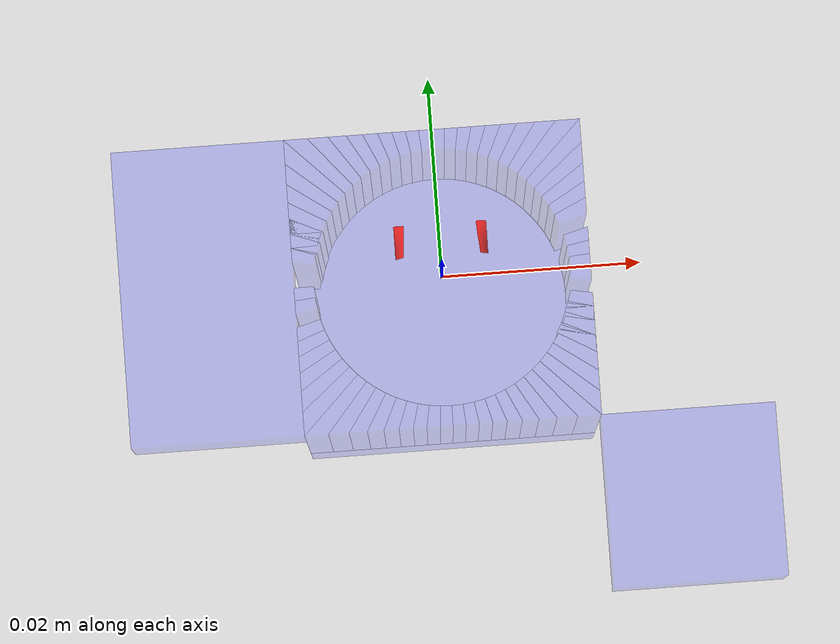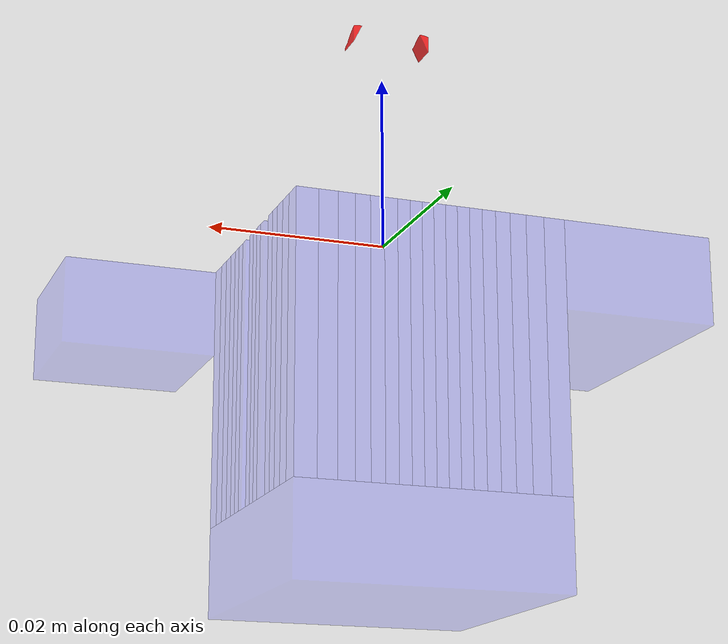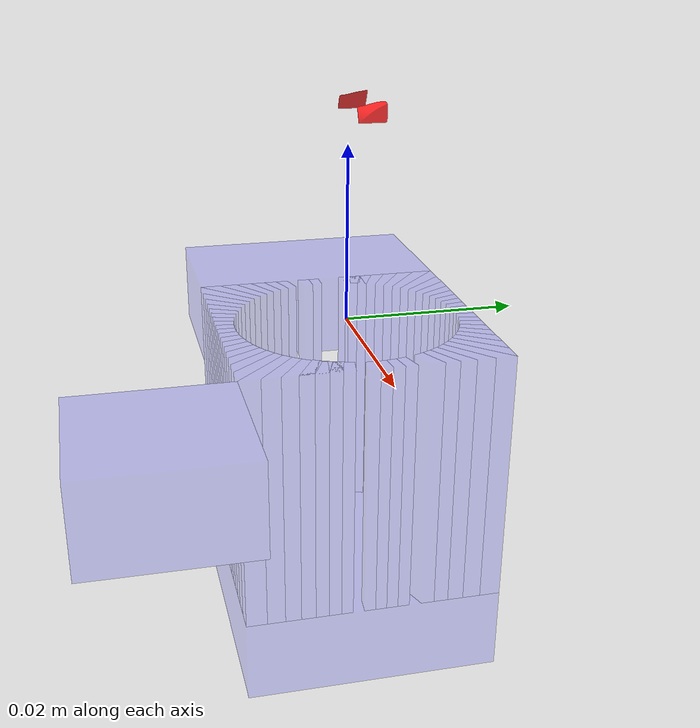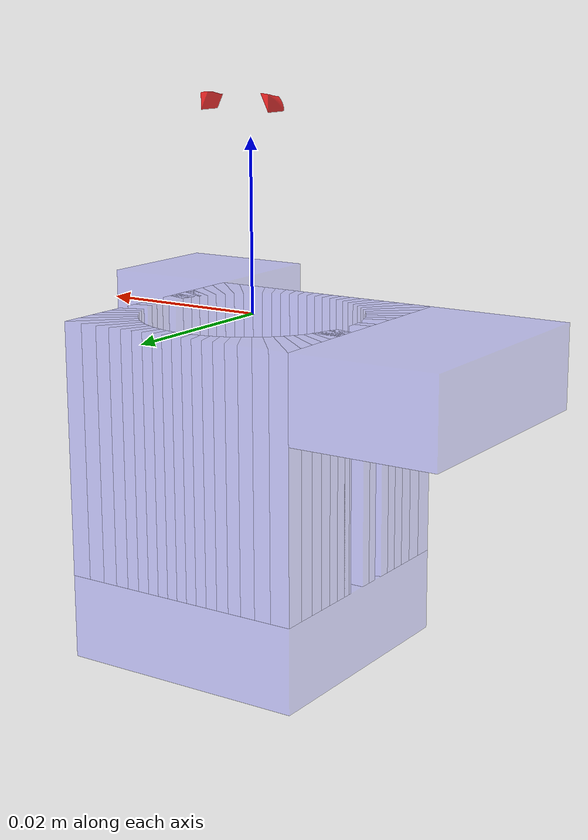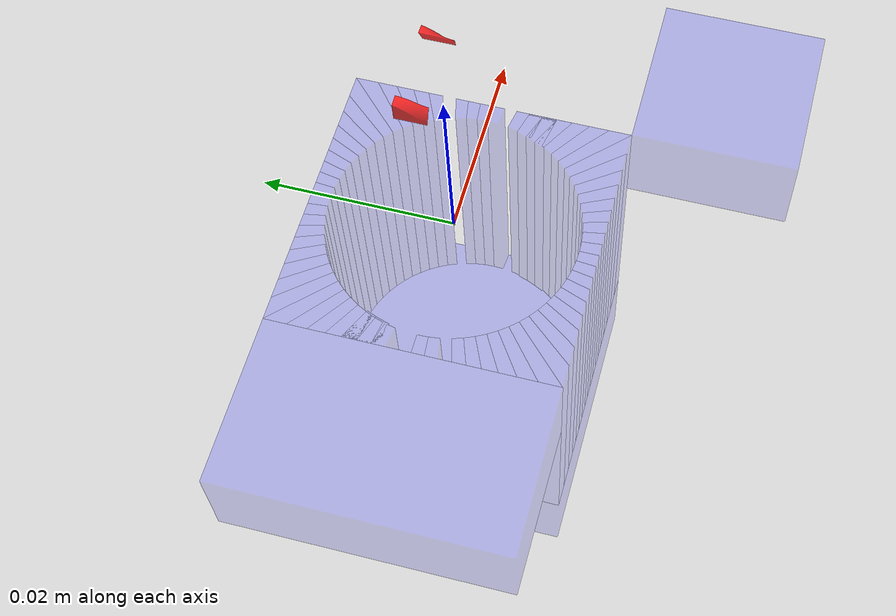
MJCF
<mujoco>
    <option timestep=".001">
        <flag energy="enable" contact="enable" override="enable"/>
    </option>

    <default>
        <default class="hole_geom">
            <geom xyaxes="1 0 0 0 1 0" rgba="0 0 1 0.2"/>
        </default>
        <site size="0.0002" />
        <geom friction="10000" />
    </default>

    <visual>
        <global offwidth="960" offheight="720"/>
    </visual>

    <asset>
        <mesh name="peg1" file="../asset/slotted_circle/slotted_circle_peg/Body1.stl" />
        <mesh name="peg2" file="../asset/slotted_circle/slotted_circle_peg/Body2.stl" />
        <mesh name="peg3" file="../asset/slotted_circle/slotted_circle_peg/Body3.stl" />
        <mesh name="peg4" file="../asset/slotted_circle/slotted_circle_peg/Body4.stl" />
        <mesh name="peg5" file="../asset/slotted_circle/slotted_circle_peg/Body5.stl" />
        <mesh name="peg6" file="../asset/slotted_circle/slotted_circle_peg/Body6.stl" />
        <mesh name="peg7" file="../asset/slotted_circle/slotted_circle_peg/Body7.stl" />
        <mesh name="peg8" file="../asset/slotted_circle/slotted_circle_peg/Body8.stl" />
        <mesh name="peg9" file="../asset/slotted_circle/slotted_circle_peg/Body9.stl" />
        <mesh name="peg10" file="../asset/slotted_circle/slotted_circle_peg/Body10.stl" />
        <mesh name="peg11" file="../asset/slotted_circle/slotted_circle_peg/Body11.stl" />
        <mesh name="peg12" file="../asset/slotted_circle/slotted_circle_peg/Body12.stl" />
        <mesh name="peg13" file="../asset/slotted_circle/slotted_circle_peg/Body13.stl" />
        <mesh name="peg14" file="../asset/slotted_circle/slotted_circle_peg/Body14.stl" />
        <mesh name="peg15" file="../asset/slotted_circle/slotted_circle_peg/Body15.stl" />
        <mesh name="peg16" file="../asset/slotted_circle/slotted_circle_peg/Body16.stl" />
        <mesh name="peg17" file="../asset/slotted_circle/slotted_circle_peg/Body17.stl" />
        <mesh name="peg18" file="../asset/slotted_circle/slotted_circle_peg/Body18.stl" />
        <mesh name="peg19" file="../asset/slotted_circle/slotted_circle_peg/Body19.stl" />
        <mesh name="peg20" file="../asset/slotted_circle/slotted_circle_peg/Body20.stl" />

        <mesh name="hole1" file="../asset/slotted_circle/slotted_circle_hole/Body1.stl" />
        <mesh name="hole2" file="../asset/slotted_circle/slotted_circle_hole/Body2.stl" />
        <mesh name="hole3" file="../asset/slotted_circle/slotted_circle_hole/Body3.stl" />
        <mesh name="hole4" file="../asset/slotted_circle/slotted_circle_hole/Body4.stl" />
        <mesh name="hole5" file="../asset/slotted_circle/slotted_circle_hole/Body5.stl" />
        <mesh name="hole6" file="../asset/slotted_circle/slotted_circle_hole/Body6.stl" />
        <mesh name="hole7" file="../asset/slotted_circle/slotted_circle_hole/Body7.stl" />
        <mesh name="hole8" file="../asset/slotted_circle/slotted_circle_hole/Body8.stl" />
        <mesh name="hole9" file="../asset/slotted_circle/slotted_circle_hole/Body9.stl" />
        <mesh name="hole10" file="../asset/slotted_circle/slotted_circle_hole/Body10.stl" />
        <mesh name="hole11" file="../asset/slotted_circle/slotted_circle_hole/Body11.stl" />
        <mesh name="hole12" file="../asset/slotted_circle/slotted_circle_hole/Body12.stl" />
        <mesh name="hole13" file="../asset/slotted_circle/slotted_circle_hole/Body13.stl" />
        <mesh name="hole14" file="../asset/slotted_circle/slotted_circle_hole/Body14.stl" />
        <mesh name="hole15" file="../asset/slotted_circle/slotted_circle_hole/Body15.stl" />
        <mesh name="hole16" file="../asset/slotted_circle/slotted_circle_hole/Body16.stl" />
        <mesh name="hole17" file="../asset/slotted_circle/slotted_circle_hole/Body17.stl" />
        <mesh name="hole18" file="../asset/slotted_circle/slotted_circle_hole/Body18.stl" />
        <mesh name="hole19" file="../asset/slotted_circle/slotted_circle_hole/Body19.stl" />
        <mesh name="hole20" file="../asset/slotted_circle/slotted_circle_hole/Body20.stl" />
        <mesh name="hole21" file="../asset/slotted_circle/slotted_circle_hole/Body21.stl" />
        <mesh name="hole22" file="../asset/slotted_circle/slotted_circle_hole/Body22.stl" />
        <mesh name="hole23" file="../asset/slotted_circle/slotted_circle_hole/Body23.stl" />
        <mesh name="hole24" file="../asset/slotted_circle/slotted_circle_hole/Body24.stl" />
        <mesh name="hole25" file="../asset/slotted_circle/slotted_circle_hole/Body25.stl" />
        <mesh name="hole26" file="../asset/slotted_circle/slotted_circle_hole/Body26.stl" />
        <mesh name="hole27" file="../asset/slotted_circle/slotted_circle_hole/Body27.stl" />
        <mesh name="hole28" file="../asset/slotted_circle/slotted_circle_hole/Body28.stl" />
        <mesh name="hole29" file="../asset/slotted_circle/slotted_circle_hole/Body29.stl" />
        <mesh name="hole30" file="../asset/slotted_circle/slotted_circle_hole/Body30.stl" />
        <mesh name="hole31" file="../asset/slotted_circle/slotted_circle_hole/Body31.stl" />
        <mesh name="hole32" file="../asset/slotted_circle/slotted_circle_hole/Body32.stl" />
        <mesh name="hole33" file="../asset/slotted_circle/slotted_circle_hole/Body33.stl" />
        <mesh name="hole34" file="../asset/slotted_circle/slotted_circle_hole/Body34.stl" />
        <mesh name="hole35" file="../asset/slotted_circle/slotted_circle_hole/Body35.stl" />
        <mesh name="hole36" file="../asset/slotted_circle/slotted_circle_hole/Body36.stl" />
        <mesh name="hole37" file="../asset/slotted_circle/slotted_circle_hole/Body37.stl" />
        <mesh name="hole38" file="../asset/slotted_circle/slotted_circle_hole/Body38.stl" />
        <mesh name="hole39" file="../asset/slotted_circle/slotted_circle_hole/Body39.stl" />
        <mesh name="hole40" file="../asset/slotted_circle/slotted_circle_hole/Body40.stl" />
        <mesh name="hole41" file="../asset/slotted_circle/slotted_circle_hole/Body41.stl" />
        <mesh name="hole42" file="../asset/slotted_circle/slotted_circle_hole/Body42.stl" />
        <mesh name="hole43" file="../asset/slotted_circle/slotted_circle_hole/Body43.stl" />
        <mesh name="hole44" file="../asset/slotted_circle/slotted_circle_hole/Body44.stl" />
        <mesh name="hole45" file="../asset/slotted_circle/slotted_circle_hole/Body45.stl" />
        <mesh name="hole46" file="../asset/slotted_circle/slotted_circle_hole/Body46.stl" />
        <mesh name="hole47" file="../asset/slotted_circle/slotted_circle_hole/Body47.stl" />
        <mesh name="hole48" file="../asset/slotted_circle/slotted_circle_hole/Body48.stl" />
        <mesh name="hole49" file="../asset/slotted_circle/slotted_circle_hole/Body49.stl" />
        <mesh name="hole50" file="../asset/slotted_circle/slotted_circle_hole/Body50.stl" />
        <mesh name="hole51" file="../asset/slotted_circle/slotted_circle_hole/Body51.stl" />
        <mesh name="hole52" file="../asset/slotted_circle/slotted_circle_hole/Body52.stl" />
        <mesh name="hole53" file="../asset/slotted_circle/slotted_circle_hole/Body53.stl" />
        <mesh name="hole54" file="../asset/slotted_circle/slotted_circle_hole/Body54.stl" />
        <mesh name="hole55" file="../asset/slotted_circle/slotted_circle_hole/Body55.stl" />
        <mesh name="hole56" file="../asset/slotted_circle/slotted_circle_hole/Body56.stl" />
        <mesh name="hole57" file="../asset/slotted_circle/slotted_circle_hole/Body57.stl" />
        <mesh name="hole58" file="../asset/slotted_circle/slotted_circle_hole/Body58.stl" />
        <mesh name="hole59" file="../asset/slotted_circle/slotted_circle_hole/Body59.stl" />
        <mesh name="hole60" file="../asset/slotted_circle/slotted_circle_hole/Body60.stl" />
        <mesh name="hole61" file="../asset/slotted_circle/slotted_circle_hole/Body61.stl" />
        <mesh name="hole62" file="../asset/slotted_circle/slotted_circle_hole/Body62.stl" />
        <mesh name="hole63" file="../asset/slotted_circle/slotted_circle_hole/Body63.stl" />
        <mesh name="hole64" file="../asset/slotted_circle/slotted_circle_hole/Body64.stl" />
        <mesh name="hole65" file="../asset/slotted_circle/slotted_circle_hole/Body65.stl" />
        <mesh name="hole66" file="../asset/slotted_circle/slotted_circle_hole/Body66.stl" />
        <mesh name="hole67" file="../asset/slotted_circle/slotted_circle_hole/Body67.stl" />
        <mesh name="hole68" file="../asset/slotted_circle/slotted_circle_hole/Body68.stl" />
        <mesh name="hole69" file="../asset/slotted_circle/slotted_circle_hole/Body69.stl" />
        <mesh name="hole70" file="../asset/slotted_circle/slotted_circle_hole/Body70.stl" />
        <mesh name="hole71" file="../asset/slotted_circle/slotted_circle_hole/Body71.stl" />
        <mesh name="hole72" file="../asset/slotted_circle/slotted_circle_hole/Body72.stl" />
        <mesh name="hole73" file="../asset/slotted_circle/slotted_circle_hole/Body73.stl" />
        <mesh name="hole74" file="../asset/slotted_circle/slotted_circle_hole/Body74.stl" />
        <mesh name="hole75" file="../asset/slotted_circle/slotted_circle_hole/Body75.stl" />
        <mesh name="hole76" file="../asset/slotted_circle/slotted_circle_hole/Body76.stl" />
    </asset>

    <worldbody>
        <site name="world" pos="0 0 0" size="0.0001" />

        <light name="top-light" pos="0.0 0.0 0.5" mode="targetbodycom" target="peg" castshadow="false" ambient=".8 .8 .8" />

        <body name="hole" pos="0 0 0">

            <camera name="track" mode="track" pos="-0.050 -0.050 0.025" euler="60 -45 -30" fovy="69.4"/>

            <inertial pos="0 0 0" mass="0.1" diaginertia="0.1 0.1 0.1" />

            <geom type="mesh" mesh="hole1" class="hole_geom"/>
            <geom type="mesh" mesh="hole2" class="hole_geom"/>
            <geom type="mesh" mesh="hole3" class="hole_geom"/>
            <geom type="mesh" mesh="hole4" class="hole_geom"/>
            <geom type="mesh" mesh="hole5" class="hole_geom"/>
            <geom type="mesh" mesh="hole6" class="hole_geom"/>
            <geom type="mesh" mesh="hole7" class="hole_geom"/>
            <geom type="mesh" mesh="hole8" class="hole_geom"/>
            <geom type="mesh" mesh="hole9" class="hole_geom"/>
            <geom type="mesh" mesh="hole10" class="hole_geom"/>
            <geom type="mesh" mesh="hole11" class="hole_geom"/>
            <geom type="mesh" mesh="hole12" class="hole_geom"/>
            <geom type="mesh" mesh="hole13" class="hole_geom"/>
            <geom type="mesh" mesh="hole14" class="hole_geom"/>
            <geom type="mesh" mesh="hole15" class="hole_geom"/>
            <geom type="mesh" mesh="hole16" class="hole_geom"/>
            <geom type="mesh" mesh="hole17" class="hole_geom"/>
            <geom type="mesh" mesh="hole18" class="hole_geom"/>
            <geom type="mesh" mesh="hole19" class="hole_geom"/>
            <geom type="mesh" mesh="hole20" class="hole_geom"/>
            <geom type="mesh" mesh="hole21" class="hole_geom"/>
            <geom type="mesh" mesh="hole22" class="hole_geom"/>
            <geom type="mesh" mesh="hole23" class="hole_geom"/>
            <geom type="mesh" mesh="hole24" class="hole_geom"/>
            <geom type="mesh" mesh="hole25" class="hole_geom"/>
            <geom type="mesh" mesh="hole26" class="hole_geom"/>
            <geom type="mesh" mesh="hole27" class="hole_geom"/>
            <geom type="mesh" mesh="hole28" class="hole_geom"/>
            <geom type="mesh" mesh="hole29" class="hole_geom"/>
            <geom type="mesh" mesh="hole30" class="hole_geom"/>
            <geom type="mesh" mesh="hole31" class="hole_geom"/>
            <geom type="mesh" mesh="hole32" class="hole_geom"/>
            <geom type="mesh" mesh="hole33" class="hole_geom"/>
            <geom type="mesh" mesh="hole34" class="hole_geom"/>
            <geom type="mesh" mesh="hole35" class="hole_geom"/>
            <geom type="mesh" mesh="hole36" class="hole_geom"/>
            <geom type="mesh" mesh="hole37" class="hole_geom"/>
            <geom type="mesh" mesh="hole38" class="hole_geom"/>
            <geom type="mesh" mesh="hole39" class="hole_geom"/>
            <geom type="mesh" mesh="hole40" class="hole_geom"/>
            <geom type="mesh" mesh="hole41" class="hole_geom"/>
            <geom type="mesh" mesh="hole42" class="hole_geom"/>
            <geom type="mesh" mesh="hole43" class="hole_geom"/>
            <geom type="mesh" mesh="hole44" class="hole_geom"/>
            <geom type="mesh" mesh="hole45" class="hole_geom"/>
            <geom type="mesh" mesh="hole46" class="hole_geom"/>
            <geom type="mesh" mesh="hole47" class="hole_geom"/>
            <geom type="mesh" mesh="hole48" class="hole_geom"/>
            <geom type="mesh" mesh="hole49" class="hole_geom"/>
            <geom type="mesh" mesh="hole50" class="hole_geom"/>
            <geom type="mesh" mesh="hole51" class="hole_geom"/>
            <geom type="mesh" mesh="hole52" class="hole_geom"/>
            <geom type="mesh" mesh="hole53" class="hole_geom"/>
            <geom type="mesh" mesh="hole54" class="hole_geom"/>
            <geom type="mesh" mesh="hole55" class="hole_geom"/>
            <geom type="mesh" mesh="hole56" class="hole_geom"/>
            <geom type="mesh" mesh="hole57" class="hole_geom"/>
            <geom type="mesh" mesh="hole58" class="hole_geom"/>
            <geom type="mesh" mesh="hole59" class="hole_geom"/>
            <geom type="mesh" mesh="hole60" class="hole_geom"/>
            <geom type="mesh" mesh="hole61" class="hole_geom"/>
            <geom type="mesh" mesh="hole62" class="hole_geom"/>
            <geom type="mesh" mesh="hole63" class="hole_geom"/>
            <geom type="mesh" mesh="hole64" class="hole_geom"/>
            <geom type="mesh" mesh="hole65" class="hole_geom"/>
            <geom type="mesh" mesh="hole66" class="hole_geom"/>
            <geom type="mesh" mesh="hole67" class="hole_geom"/>
            <geom type="mesh" mesh="hole68" class="hole_geom"/>
            <geom type="mesh" mesh="hole69" class="hole_geom"/>
            <geom type="mesh" mesh="hole70" class="hole_geom"/>
            <geom type="mesh" mesh="hole71" class="hole_geom"/>
            <geom type="mesh" mesh="hole72" class="hole_geom"/>
            <geom type="mesh" mesh="hole73" class="hole_geom"/>
            <geom type="mesh" mesh="hole74" class="hole_geom"/>
            <geom type="mesh" mesh="hole75" class="hole_geom"/>
            <geom type="mesh" mesh="hole76" class="hole_geom"/>

        </body>

        <body name="peg" pos="0 0 0">
            <inertial pos="0 0 0" mass="1.0" diaginertia="0.1 0.1 0.1" />

            <site name="peg/origin" pos="0 0 0" />
            <site name="peg/sensor" pos="0 0 0" />

            <geom type="mesh" mesh="peg1" xyaxes="1 0 0 0 1 0" rgba="1 0 0 0.8"/>
            <geom type="mesh" mesh="peg2" xyaxes="1 0 0 0 1 0" rgba="1 0 0 0.8"/>
            <geom type="mesh" mesh="peg3" xyaxes="1 0 0 0 1 0" rgba="1 0 0 0.8"/>
            <geom type="mesh" mesh="peg4" xyaxes="1 0 0 0 1 0" rgba="1 0 0 0.8"/>
            <geom type="mesh" mesh="peg5" xyaxes="1 0 0 0 1 0" rgba="1 0 0 0.8"/>
            <geom type="mesh" mesh="peg6" xyaxes="1 0 0 0 1 0" rgba="1 0 0 0.8"/>
            <geom type="mesh" mesh="peg7" xyaxes="1 0 0 0 1 0" rgba="1 0 0 0.8"/>
            <geom type="mesh" mesh="peg8" xyaxes="1 0 0 0 1 0" rgba="1 0 0 0.8"/>
            <geom type="mesh" mesh="peg9" xyaxes="1 0 0 0 1 0" rgba="1 0 0 0.8"/>
            <geom type="mesh" mesh="peg10" xyaxes="1 0 0 0 1 0" rgba="1 0 0 0.8"/>
            <geom type="mesh" mesh="peg11" xyaxes="1 0 0 0 1 0" rgba="1 0 0 0.8"/>
            <geom type="mesh" mesh="peg12" xyaxes="1 0 0 0 1 0" rgba="1 0 0 0.8"/>
            <geom type="mesh" mesh="peg13" xyaxes="1 0 0 0 1 0" rgba="1 0 0 0.8"/>
            <geom type="mesh" mesh="peg14" xyaxes="1 0 0 0 1 0" rgba="1 0 0 0.8"/>
            <geom type="mesh" mesh="peg15" xyaxes="1 0 0 0 1 0" rgba="1 0 0 0.8"/>
            <geom type="mesh" mesh="peg16" xyaxes="1 0 0 0 1 0" rgba="1 0 0 0.8"/>
            <geom type="mesh" mesh="peg17" xyaxes="1 0 0 0 1 0" rgba="1 0 0 0.8"/>
            <geom type="mesh" mesh="peg18" xyaxes="1 0 0 0 1 0" rgba="1 0 0 0.8"/>
            <geom type="mesh" mesh="peg19" xyaxes="1 0 0 0 1 0" rgba="1 0 0 0.8"/>
            <geom type="mesh" mesh="peg20" xyaxes="1 0 0 0 1 0" rgba="1 0 0 0.8"/>

            <joint name="trans_x" type="slide" axis="1 0 0" limited="false"/>
            <joint name="trans_y" type="slide" axis="0 1 0" limited="false"/>
            <joint name="trans_z" type="slide" axis="0 0 1" limited="false"/>
            <joint name="hinge_x" type="hinge" axis="1 0 0" limited="false"/>
            <joint name="hinge_y" type="hinge" axis="0 1 0" limited="false"/>
            <joint name="hinge_z" type="hinge" axis="0 0 1" limited="false"/>
        </body>

    </worldbody>

    <actuator>
        <position name="x" forcelimited="true" forcerange="-20 20" joint="trans_x" kp="100000" kv="100" />
        <position name="y" forcelimited="true" forcerange="-20 20" joint="trans_y" kp="100000" kv="100" />
        <position name="z" forcelimited="true" forcerange="-20 20" joint="trans_z" kp="100000" kv="100" />
        <position name="rx" forcelimited="true" forcerange="-5 5" joint="hinge_x" kp="50" kv="5" />
        <position name="ry" forcelimited="true" forcerange="-5 5" joint="hinge_y" kp="50" kv="5"/>
        <position name="rz" forcelimited="true" forcerange="-5 5" joint="hinge_z" kp="50" kv="5"/>
    </actuator>

    <sensor>
        <force name="force_sensor" site="peg/sensor" />
        <torque name="torque_sensor" site="peg/sensor" />
        <framepos name="peg_pos" objtype="site" objname="peg/origin"/>
        <framequat name="peg_quat" objtype="site" objname="peg/origin"/>
    </sensor>
</mujoco>
